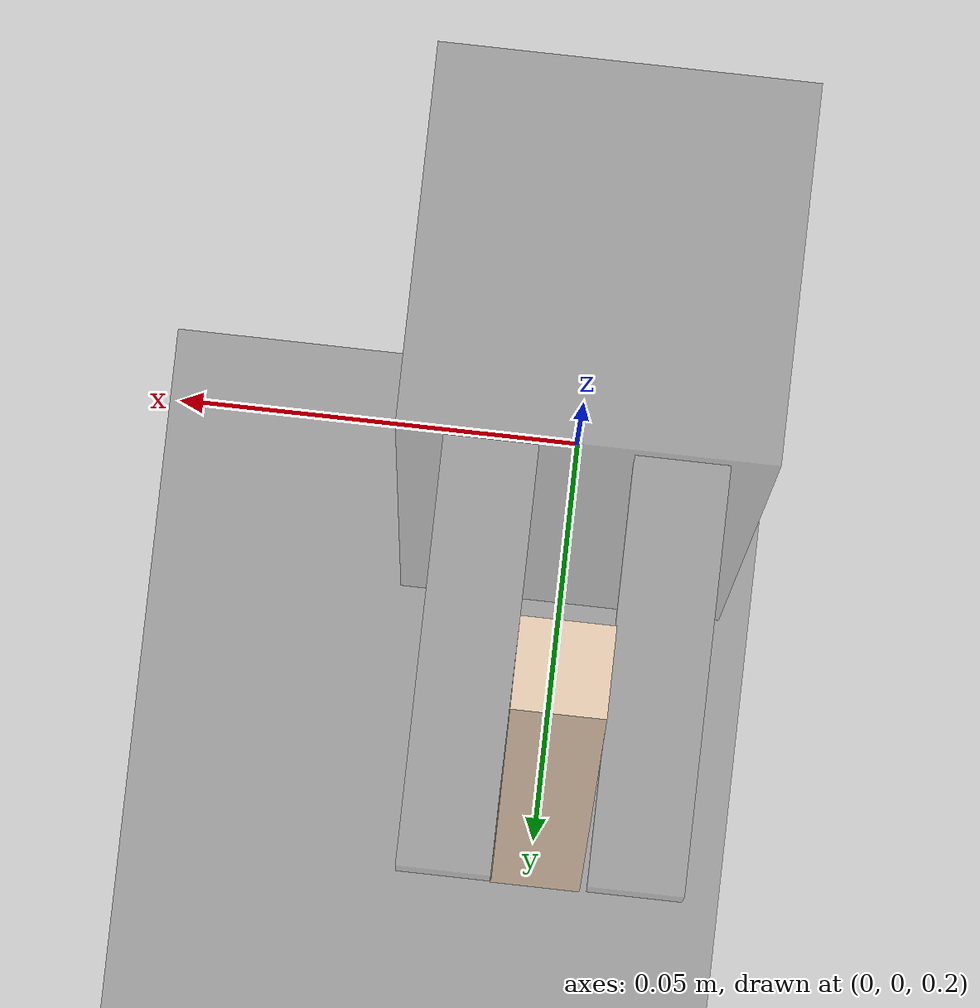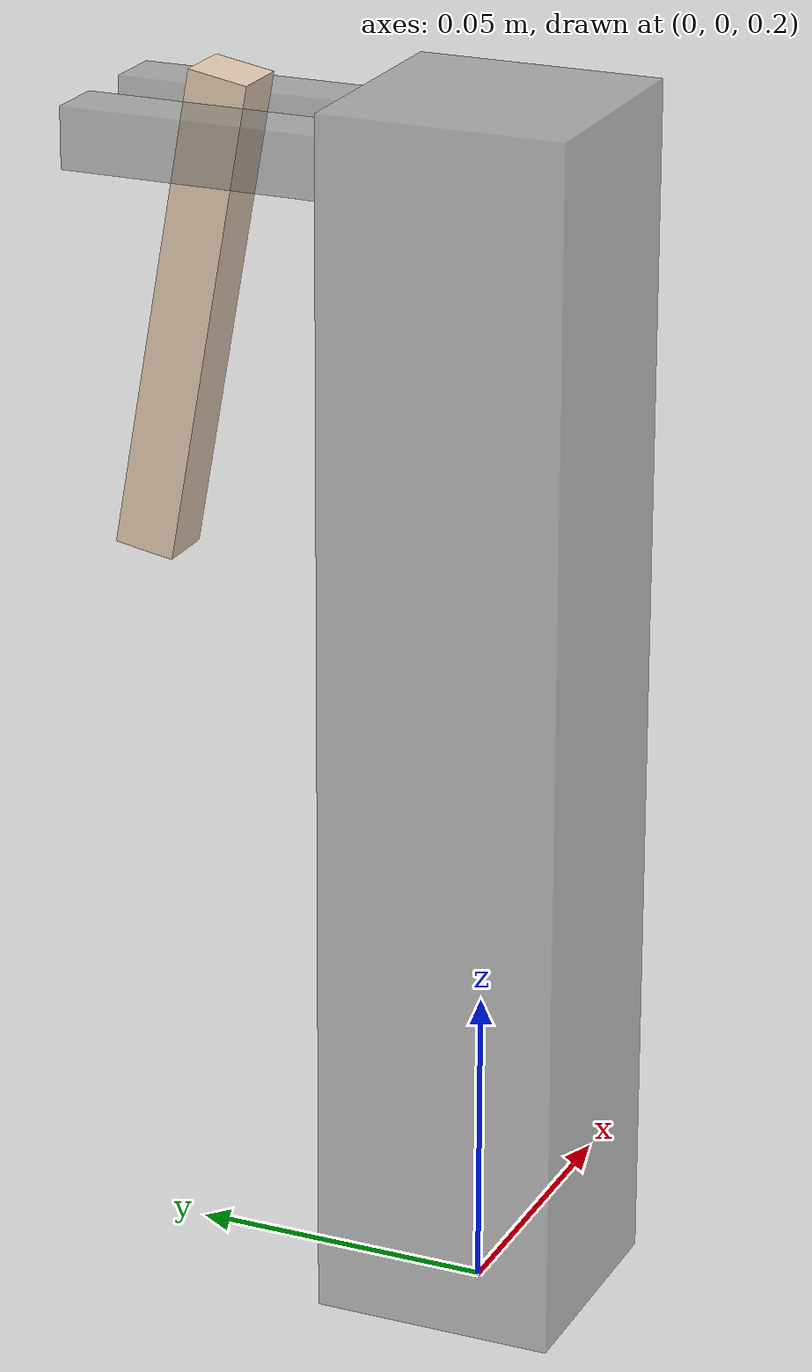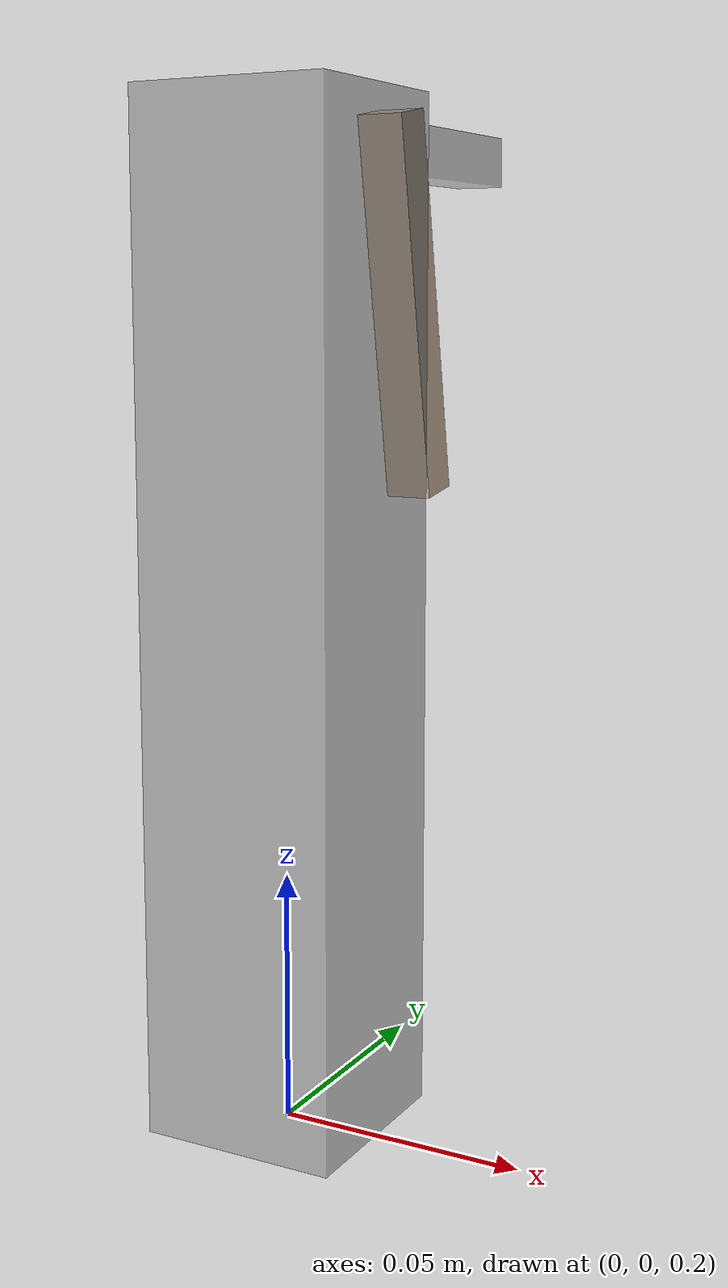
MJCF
<?xml version="1.0"?>
<mujoco model="robot">
    <worldbody>
    <geom name="table" type="box" size="0.5 0.5 0.02" rgba="0.5 0.5 0.5 0.5"/>
    <body>
        <joint type="slide" />
        <geom name="post" type="box" pos="0 0 0.3" size="0.02 0.02 0.1" rgba="0.5 0.5 0.5 0.5"/>
        <geom name="finger1" type="box" pos="0.01 0.025 0.39" size="0.005 0.04 0.005" rgba="0.5 0.5 0.5 0.5"/>
        <geom name="finger2" type="box" pos="-0.01 0.025 0.39" size="0.005 0.04 0.005" rgba="0.5 0.5 0.5 0.5"/>
    </body>
    <body>
        <joint type="free" />
        <geom name="manipuland" type="box" pos="0.0 0.05 0.36" euler="10 0 0" size="0.00501 0.005 0.04" rgba="0.9 0.8 0.7 1.0"/>
    </body>
    </worldbody>
</mujoco>
